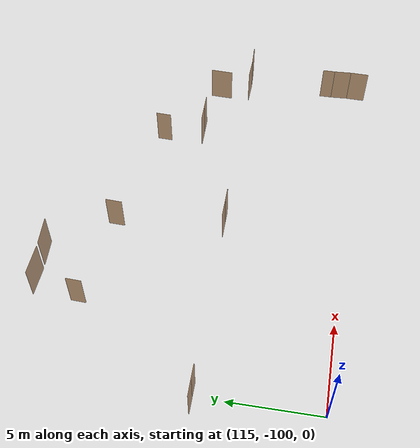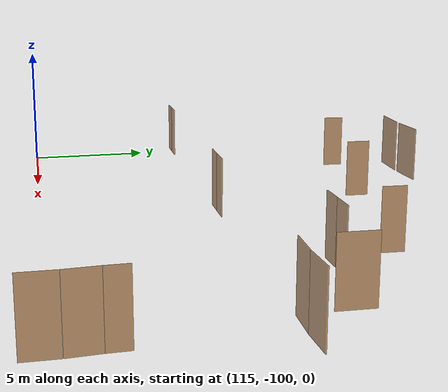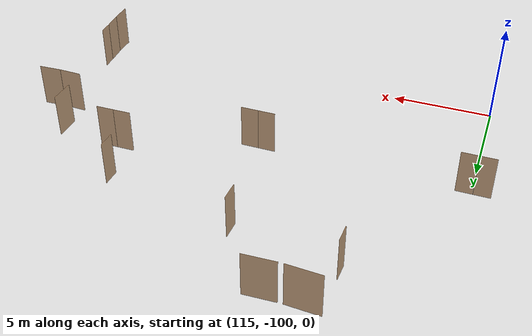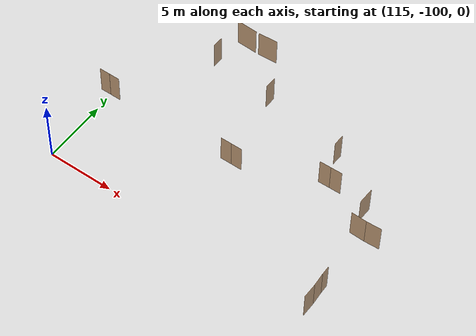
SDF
<sdf version="1.7">
 <world name="sim_world">
  <model name="puerta109">
   <pose>136.6909992048098 -93.4653461180836 0.0 0 0 0.03965179639595527</pose>
   <link name="right">
    <pose>0 0 1.11 0 0 0</pose>
    <visual name="right_visual">
     <geometry><box><size>1.1320165627569505 0.03 2.2</size></box></geometry>
     <material>
      <ambient>0.5 0.25 0 0.6</ambient>
      <diffuse>0.5 0.25 0 0.6</diffuse>
      <pbr><metal><metalness>0.0</metalness></metal></pbr>
     </material>
    </visual>
    <collision name="right_collision">
     <geometry><box><size>1.1320165627569505 0.03 2.2</size></box></geometry>
     <surface><contact><collide_bitmask>0x02</collide_bitmask></contact></surface>
    </collision>
    <inertial>
     <mass>50.0</mass>
     <inertia><ixx>20.17041666666667</ixx><iyy>25.50608957648359</iyy><izz>5.3431729098169205</izz></inertia>
    </inertial>
   </link>
   <joint name="right_joint" type="revolute">
    <parent>world</parent>
    <child>right</child>
    <axis><xyz>0 0 -1</xyz><limit><lower>0</lower><upper>1.57</upper></limit></axis>
    <pose>0.5710082813784753 0 0 0 0 0</pose>
   </joint>
   <plugin name="register_component" filename="libregister_component.so">
    <component name="Door">
     <v_max_door>0.5</v_max_door>
     <a_max_door>0.3</a_max_door>
     <a_nom_door>0.15</a_nom_door>
     <dx_min_door>0.01</dx_min_door>
     <f_max_door>500.0</f_max_door>
     <ros_interface>true</ros_interface>
     <door name="puerta109" type="SwingDoor" left_joint_name="empty_joint" right_joint_name="right_joint"/>
    </component>
   </plugin>
  </model>
  <model name="puerta110">
   <pose>135.54605160742005 -93.46479916189479 0.0 0 0 3.1012541606016946</pose>
   <link name="right">
    <pose>0 0 1.11 0 0 0</pose>
    <visual name="right_visual">
     <geometry><box><size>1.139711565768563 0.03 2.2</size></box></geometry>
     <material>
      <ambient>0.5 0.25 0 0.6</ambient>
      <diffuse>0.5 0.25 0 0.6</diffuse>
      <pbr><metal><metalness>0.0</metalness></metal></pbr>
     </material>
    </visual>
    <collision name="right_collision">
     <geometry><box><size>1.139711565768563 0.03 2.2</size></box></geometry>
     <surface><contact><collide_bitmask>0x02</collide_bitmask></contact></surface>
    </collision>
    <inertial>
     <mass>50.0</mass>
     <inertia><ixx>20.17041666666667</ixx><iyy>25.578926888110963</iyy><izz>5.41601022144429</izz></inertia>
    </inertial>
   </link>
   <joint name="right_joint" type="revolute">
    <parent>world</parent>
    <child>right</child>
    <axis><xyz>0 0 1</xyz><limit><lower>0</lower><upper>1.57</upper></limit></axis>
    <pose>0.5748557828842815 0 0 0 0 0</pose>
   </joint>
   <plugin name="register_component" filename="libregister_component.so">
    <component name="Door">
     <v_max_door>0.5</v_max_door>
     <a_max_door>0.3</a_max_door>
     <a_nom_door>0.15</a_nom_door>
     <dx_min_door>0.01</dx_min_door>
     <f_max_door>500.0</f_max_door>
     <ros_interface>true</ros_interface>
     <door name="puerta110" type="SwingDoor" left_joint_name="empty_joint" right_joint_name="right_joint"/>
    </component>
   </plugin>
  </model>
  <model name="puerta111">
   <pose>134.9949511736417 -91.76422822378078 0.0 0 0 1.5330867218950344</pose>
   <link name="right">
    <pose>0 0 1.11 0 0 0</pose>
    <visual name="right_visual">
     <geometry><box><size>1.225400466177177 0.03 2.2</size></box></geometry>
     <material>
      <ambient>0.5 0.25 0 0.6</ambient>
      <diffuse>0.5 0.25 0 0.6</diffuse>
      <pbr><metal><metalness>0.0</metalness></metal></pbr>
     </material>
    </visual>
    <collision name="right_collision">
     <geometry><box><size>1.225400466177177 0.03 2.2</size></box></geometry>
     <surface><contact><collide_bitmask>0x02</collide_bitmask></contact></surface>
    </collision>
    <inertial>
     <mass>50.0</mass>
     <inertia><ixx>20.17041666666667</ixx><iyy>26.42335959378018</iyy><izz>6.260442927113511</izz></inertia>
    </inertial>
   </link>
   <joint name="right_joint" type="revolute">
    <parent>world</parent>
    <child>right</child>
    <axis><xyz>0 0 1</xyz><limit><lower>0</lower><upper>1.57</upper></limit></axis>
    <pose>0.6177002330885885 0 0 0 0 0</pose>
   </joint>
   <plugin name="register_component" filename="libregister_component.so">
    <component name="Door">
     <v_max_door>0.5</v_max_door>
     <a_max_door>0.3</a_max_door>
     <a_nom_door>0.15</a_nom_door>
     <dx_min_door>0.01</dx_min_door>
     <f_max_door>500.0</f_max_door>
     <ros_interface>true</ros_interface>
     <door name="puerta111" type="SwingDoor" left_joint_name="empty_joint" right_joint_name="right_joint"/>
    </component>
   </plugin>
  </model>
  <model name="puerta112">
   <pose>131.86192301381269 -91.18165677236942 0.0 0 0 0.006785040997605178</pose>
   <link name="right">
    <pose>0.4356185580332882 0 1.11 0 0 0</pose>
    <visual name="right_visual">
     <geometry><box><size>0.8612371160665764 0.03 2.2</size></box></geometry>
     <material>
      <ambient>0.5 0.25 0 0.6</ambient>
      <diffuse>0.5 0.25 0 0.6</diffuse>
      <pbr><metal><metalness>0.0</metalness></metal></pbr>
     </material>
    </visual>
    <collision name="right_collision">
     <geometry><box><size>0.8612371160665764 0.03 2.2</size></box></geometry>
     <surface><contact><collide_bitmask>0x02</collide_bitmask></contact></surface>
    </collision>
    <inertial>
     <mass>50.0</mass>
     <inertia><ixx>20.17041666666667</ixx><iyy>23.257205708711144</iyy><izz>3.094289042044473</izz></inertia>
    </inertial>
   </link>
   <joint name="right_joint" type="revolute">
    <parent>world</parent>
    <child>right</child>
    <axis><xyz>0 0 -1</xyz><limit><lower>0</lower><upper>1.57</upper></limit></axis>
    <pose>0.4356185580332882 0 0 0 0 0</pose>
   </joint>
   <link name="left">
    <pose>-0.4356185580332882 0 1.11 0 0 0</pose>
    <visual name="left_visual">
     <geometry><box><size>0.8612371160665764 0.03 2.2</size></box></geometry>
     <material>
      <ambient>0.5 0.25 0 0.6</ambient>
      <diffuse>0.5 0.25 0 0.6</diffuse>
      <pbr><metal><metalness>0.0</metalness></metal></pbr>
     </material>
    </visual>
    <collision name="left_collision">
     <geometry><box><size>0.8612371160665764 0.03 2.2</size></box></geometry>
     <surface><contact><collide_bitmask>0x02</collide_bitmask></contact></surface>
    </collision>
    <inertial>
     <mass>50.0</mass>
     <inertia><ixx>20.17041666666667</ixx><iyy>23.257205708711144</iyy><izz>3.094289042044473</izz></inertia>
    </inertial>
   </link>
   <joint name="left_joint" type="revolute">
    <parent>world</parent>
    <child>left</child>
    <axis><xyz>0 0 -1</xyz><limit><lower>-1.57</lower><upper>0</upper></limit></axis>
    <pose>-0.4356185580332882 0 0 0 0 0</pose>
   </joint>
   <plugin name="register_component" filename="libregister_component.so">
    <component name="Door">
     <v_max_door>0.5</v_max_door>
     <a_max_door>0.3</a_max_door>
     <a_nom_door>0.15</a_nom_door>
     <dx_min_door>0.01</dx_min_door>
     <f_max_door>500.0</f_max_door>
     <ros_interface>true</ros_interface>
     <door name="puerta112" type="DoubleSwingDoor" left_joint_name="left_joint" right_joint_name="right_joint"/>
    </component>
   </plugin>
  </model>
  <model name="puerta113">
   <pose>131.00848202828178 -88.92952259139423 0.0 0 0 -1.6130169970053267</pose>
   <link name="right">
    <pose>0 0 1.11 0 0 0</pose>
    <visual name="right_visual">
     <geometry><box><size>0.8323058361690955 0.03 2.2</size></box></geometry>
     <material>
      <ambient>0.5 0.25 0 0.6</ambient>
      <diffuse>0.5 0.25 0 0.6</diffuse>
      <pbr><metal><metalness>0.0</metalness></metal></pbr>
     </material>
    </visual>
    <collision name="right_collision">
     <geometry><box><size>0.8323058361690955 0.03 2.2</size></box></geometry>
     <surface><contact><collide_bitmask>0x02</collide_bitmask></contact></surface>
    </collision>
    <inertial>
     <mass>50.0</mass>
     <inertia><ixx>20.17041666666667</ixx><iyy>23.05305418717141</iyy><izz>2.8901375205047386</izz></inertia>
    </inertial>
   </link>
   <joint name="right_joint" type="revolute">
    <parent>world</parent>
    <child>right</child>
    <axis><xyz>0 0 1</xyz><limit><lower>0</lower><upper>1.57</upper></limit></axis>
    <pose>0.42115291808454774 0 0 0 0 0</pose>
   </joint>
   <plugin name="register_component" filename="libregister_component.so">
    <component name="Door">
     <v_max_door>0.5</v_max_door>
     <a_max_door>0.3</a_max_door>
     <a_nom_door>0.15</a_nom_door>
     <dx_min_door>0.01</dx_min_door>
     <f_max_door>500.0</f_max_door>
     <ros_interface>true</ros_interface>
     <door name="puerta113" type="SwingDoor" left_joint_name="empty_joint" right_joint_name="right_joint"/>
    </component>
   </plugin>
  </model>
  <model name="puerta114">
   <pose>124.4180386151069 -87.47750116754106 0.0 0 0 -1.610241551311159</pose>
   <link name="right">
    <pose>0 0 1.11 0 0 0</pose>
    <visual name="right_visual">
     <geometry><box><size>0.8915381152127525 0.03 2.2</size></box></geometry>
     <material>
      <ambient>0.5 0.25 0 0.6</ambient>
      <diffuse>0.5 0.25 0 0.6</diffuse>
      <pbr><metal><metalness>0.0</metalness></metal></pbr>
     </material>
    </visual>
    <collision name="right_collision">
     <geometry><box><size>0.8915381152127525 0.03 2.2</size></box></geometry>
     <surface><contact><collide_bitmask>0x02</collide_bitmask></contact></surface>
    </collision>
    <inertial>
     <mass>50.0</mass>
     <inertia><ixx>20.17041666666667</ixx><iyy>23.478500878654618</iyy><izz>3.3155842119879466</izz></inertia>
    </inertial>
   </link>
   <joint name="right_joint" type="revolute">
    <parent>world</parent>
    <child>right</child>
    <axis><xyz>0 0 1</xyz><limit><lower>0</lower><upper>1.57</upper></limit></axis>
    <pose>0.45076905760637626 0 0 0 0 0</pose>
   </joint>
   <plugin name="register_component" filename="libregister_component.so">
    <component name="Door">
     <v_max_door>0.5</v_max_door>
     <a_max_door>0.3</a_max_door>
     <a_nom_door>0.15</a_nom_door>
     <dx_min_door>0.01</dx_min_door>
     <f_max_door>500.0</f_max_door>
     <ros_interface>true</ros_interface>
     <door name="puerta114" type="SwingDoor" left_joint_name="empty_joint" right_joint_name="right_joint"/>
    </component>
   </plugin>
  </model>
  <model name="puerta115">
   <pose>125.34729614311735 -93.43555804257 0.0 0 0 -0.007075006009822052</pose>
   <link name="right">
    <pose>0.4281722281429445 0 1.11 0 0 0</pose>
    <visual name="right_visual">
     <geometry><box><size>0.846344456285889 0.03 2.2</size></box></geometry>
     <material>
      <ambient>0.5 0.25 0 0.6</ambient>
      <diffuse>0.5 0.25 0 0.6</diffuse>
      <pbr><metal><metalness>0.0</metalness></metal></pbr>
     </material>
    </visual>
    <collision name="right_collision">
     <geometry><box><size>0.846344456285889 0.03 2.2</size></box></geometry>
     <surface><contact><collide_bitmask>0x02</collide_bitmask></contact></surface>
    </collision>
    <inertial>
     <mass>50.0</mass>
     <inertia><ixx>20.17041666666667</ixx><iyy>23.151245577857743</iyy><izz>2.988328911191071</izz></inertia>
    </inertial>
   </link>
   <joint name="right_joint" type="revolute">
    <parent>world</parent>
    <child>right</child>
    <axis><xyz>0 0 1</xyz><limit><lower>0</lower><upper>1.57</upper></limit></axis>
    <pose>0.4281722281429445 0 0 0 0 0</pose>
   </joint>
   <link name="left">
    <pose>-0.4281722281429445 0 1.11 0 0 0</pose>
    <visual name="left_visual">
     <geometry><box><size>0.846344456285889 0.03 2.2</size></box></geometry>
     <material>
      <ambient>0.5 0.25 0 0.6</ambient>
      <diffuse>0.5 0.25 0 0.6</diffuse>
      <pbr><metal><metalness>0.0</metalness></metal></pbr>
     </material>
    </visual>
    <collision name="left_collision">
     <geometry><box><size>0.846344456285889 0.03 2.2</size></box></geometry>
     <surface><contact><collide_bitmask>0x02</collide_bitmask></contact></surface>
    </collision>
    <inertial>
     <mass>50.0</mass>
     <inertia><ixx>20.17041666666667</ixx><iyy>23.151245577857743</iyy><izz>2.988328911191071</izz></inertia>
    </inertial>
   </link>
   <joint name="left_joint" type="revolute">
    <parent>world</parent>
    <child>left</child>
    <axis><xyz>0 0 1</xyz><limit><lower>-1.57</lower><upper>0</upper></limit></axis>
    <pose>-0.4281722281429445 0 0 0 0 0</pose>
   </joint>
   <plugin name="register_component" filename="libregister_component.so">
    <component name="Door">
     <v_max_door>0.5</v_max_door>
     <a_max_door>0.3</a_max_door>
     <a_nom_door>0.15</a_nom_door>
     <dx_min_door>0.01</dx_min_door>
     <f_max_door>500.0</f_max_door>
     <ros_interface>true</ros_interface>
     <door name="puerta115" type="DoubleSwingDoor" left_joint_name="left_joint" right_joint_name="right_joint"/>
    </component>
   </plugin>
  </model>
  <model name="puerta116">
   <pose>114.9262029880637 -93.42428233036992 0.0 0 0 -0.00635058426290977</pose>
   <link name="right">
    <pose>0.4107618623763043 0 1.11 0 0 0</pose>
    <visual name="right_visual">
     <geometry><box><size>0.8115237247526086 0.03 2.2</size></box></geometry>
     <material>
      <ambient>0.5 0.25 0 0.6</ambient>
      <diffuse>0.5 0.25 0 0.6</diffuse>
      <pbr><metal><metalness>0.0</metalness></metal></pbr>
     </material>
    </visual>
    <collision name="right_collision">
     <geometry><box><size>0.8115237247526086 0.03 2.2</size></box></geometry>
     <surface><contact><collide_bitmask>0x02</collide_bitmask></contact></surface>
    </collision>
    <inertial>
     <mass>50.0</mass>
     <inertia><ixx>20.17041666666667</ixx><iyy>22.91071148265145</iyy><izz>2.747794815984782</izz></inertia>
    </inertial>
   </link>
   <joint name="right_joint" type="revolute">
    <parent>world</parent>
    <child>right</child>
    <axis><xyz>0 0 1</xyz><limit><lower>0</lower><upper>1.57</upper></limit></axis>
    <pose>0.4107618623763043 0 0 0 0 0</pose>
   </joint>
   <link name="left">
    <pose>-0.4107618623763043 0 1.11 0 0 0</pose>
    <visual name="left_visual">
     <geometry><box><size>0.8115237247526086 0.03 2.2</size></box></geometry>
     <material>
      <ambient>0.5 0.25 0 0.6</ambient>
      <diffuse>0.5 0.25 0 0.6</diffuse>
      <pbr><metal><metalness>0.0</metalness></metal></pbr>
     </material>
    </visual>
    <collision name="left_collision">
     <geometry><box><size>0.8115237247526086 0.03 2.2</size></box></geometry>
     <surface><contact><collide_bitmask>0x02</collide_bitmask></contact></surface>
    </collision>
    <inertial>
     <mass>50.0</mass>
     <inertia><ixx>20.17041666666667</ixx><iyy>22.91071148265145</iyy><izz>2.747794815984782</izz></inertia>
    </inertial>
   </link>
   <joint name="left_joint" type="revolute">
    <parent>world</parent>
    <child>left</child>
    <axis><xyz>0 0 1</xyz><limit><lower>-1.57</lower><upper>0</upper></limit></axis>
    <pose>-0.4107618623763043 0 0 0 0 0</pose>
   </joint>
   <plugin name="register_component" filename="libregister_component.so">
    <component name="Door">
     <v_max_door>0.5</v_max_door>
     <a_max_door>0.3</a_max_door>
     <a_nom_door>0.15</a_nom_door>
     <dx_min_door>0.01</dx_min_door>
     <f_max_door>500.0</f_max_door>
     <ros_interface>true</ros_interface>
     <door name="puerta116" type="DoubleSwingDoor" left_joint_name="left_joint" right_joint_name="right_joint"/>
    </component>
   </plugin>
  </model>
  <model name="puerta161">
   <pose>136.1189040680918 -100.0409165302782 0.0 0 0 -1.5909676570602367</pose>
   <link name="right">
    <pose>0 0 1.11 0 0 0</pose>
    <visual name="right_visual">
     <geometry><box><size>1.0392333467231558 0.03 2.2</size></box></geometry>
     <material>
      <ambient>0.5 0.25 0 0.6</ambient>
      <diffuse>0.5 0.25 0 0.6</diffuse>
      <pbr><metal><metalness>0.0</metalness></metal></pbr>
     </material>
    </visual>
    <collision name="right_collision">
     <geometry><box><size>1.0392333467231558 0.03 2.2</size></box></geometry>
     <surface><contact><collide_bitmask>0x02</collide_bitmask></contact></surface>
    </collision>
    <inertial>
     <mass>50.0</mass>
     <inertia><ixx>20.17041666666667</ixx><iyy>24.66669145392255</iyy><izz>4.503774787255878</izz></inertia>
    </inertial>
   </link>
   <joint name="right_joint" type="revolute">
    <parent>world</parent>
    <child>right</child>
    <axis><xyz>0 0 1</xyz><limit><lower>0</lower><upper>1.57</upper></limit></axis>
    <pose>0.5246166733615779 0 0 0 0 0</pose>
   </joint>
   <plugin name="register_component" filename="libregister_component.so">
    <component name="Door">
     <v_max_door>0.5</v_max_door>
     <a_max_door>0.3</a_max_door>
     <a_nom_door>0.15</a_nom_door>
     <dx_min_door>0.01</dx_min_door>
     <f_max_door>500.0</f_max_door>
     <ros_interface>true</ros_interface>
     <door name="puerta161" type="SwingDoor" left_joint_name="empty_joint" right_joint_name="right_joint"/>
    </component>
   </plugin>
  </model>
  <model name="puerta162">
   <pose>136.10302130183982 -99.02761708017954 0.0 0 0 -1.5167066809419885</pose>
   <link name="right">
    <pose>0 0 1.11 0 0 0</pose>
    <visual name="right_visual">
     <geometry><box><size>0.9690107954249821 0.03 2.2</size></box></geometry>
     <material>
      <ambient>0.5 0.25 0 0.6</ambient>
      <diffuse>0.5 0.25 0 0.6</diffuse>
      <pbr><metal><metalness>0.0</metalness></metal></pbr>
     </material>
    </visual>
    <collision name="right_collision">
     <geometry><box><size>0.9690107954249821 0.03 2.2</size></box></geometry>
     <surface><contact><collide_bitmask>0x02</collide_bitmask></contact></surface>
    </collision>
    <inertial>
     <mass>50.0</mass>
     <inertia><ixx>20.17041666666667</ixx><iyy>24.07909134020899</iyy><izz>3.9161746735423195</izz></inertia>
    </inertial>
   </link>
   <joint name="right_joint" type="revolute">
    <parent>world</parent>
    <child>right</child>
    <axis><xyz>0 0 1</xyz><limit><lower>0</lower><upper>1.57</upper></limit></axis>
    <pose>0.4895053977124911 0 0 0 0 0</pose>
   </joint>
   <plugin name="register_component" filename="libregister_component.so">
    <component name="Door">
     <v_max_door>0.5</v_max_door>
     <a_max_door>0.3</a_max_door>
     <a_nom_door>0.15</a_nom_door>
     <dx_min_door>0.01</dx_min_door>
     <f_max_door>500.0</f_max_door>
     <ros_interface>true</ros_interface>
     <door name="puerta162" type="SwingDoor" left_joint_name="empty_joint" right_joint_name="right_joint"/>
    </component>
   </plugin>
  </model>
  <model name="puerta163">
   <pose>136.07390640317396 -98.19165765591404 0.0 0 0 -1.5631614996855772</pose>
   <link name="right">
    <pose>0 0 1.11 0 0 0</pose>
    <visual name="right_visual">
     <geometry><box><size>0.6843600821462696 0.03 2.2</size></box></geometry>
     <material>
      <ambient>0.5 0.25 0 0.6</ambient>
      <diffuse>0.5 0.25 0 0.6</diffuse>
      <pbr><metal><metalness>0.0</metalness></metal></pbr>
     </material>
    </visual>
    <collision name="right_collision">
     <geometry><box><size>0.6843600821462696 0.03 2.2</size></box></geometry>
     <surface><contact><collide_bitmask>0x02</collide_bitmask></contact></surface>
    </collision>
    <inertial>
     <mass>50.0</mass>
     <inertia><ixx>20.17041666666667</ixx><iyy>22.118119675146875</iyy><izz>1.955203008480204</izz></inertia>
    </inertial>
   </link>
   <joint name="right_joint" type="revolute">
    <parent>world</parent>
    <child>right</child>
    <axis><xyz>0 0 1</xyz><limit><lower>0</lower><upper>1.57</upper></limit></axis>
    <pose>0.3471800410731348 0 0 0 0 0</pose>
   </joint>
   <plugin name="register_component" filename="libregister_component.so">
    <component name="Door">
     <v_max_door>0.5</v_max_door>
     <a_max_door>0.3</a_max_door>
     <a_nom_door>0.15</a_nom_door>
     <dx_min_door>0.01</dx_min_door>
     <f_max_door>500.0</f_max_door>
     <ros_interface>true</ros_interface>
     <door name="puerta163" type="SwingDoor" left_joint_name="empty_joint" right_joint_name="right_joint"/>
    </component>
   </plugin>
  </model>
  <model name="puerta164">
   <pose>120.10934916420882 -84.17041471901175 0.0 0 0 3.0836812469706065</pose>
   <link name="right">
    <pose>0 0 1.11 0 0 0</pose>
    <visual name="right_visual">
     <geometry><box><size>1.628482339702156 0.03 2.2</size></box></geometry>
     <material>
      <ambient>0.5 0.25 0 0.6</ambient>
      <diffuse>0.5 0.25 0 0.6</diffuse>
      <pbr><metal><metalness>0.0</metalness></metal></pbr>
     </material>
    </visual>
    <collision name="right_collision">
     <geometry><box><size>1.628482339702156 0.03 2.2</size></box></geometry>
     <surface><contact><collide_bitmask>0x02</collide_bitmask></contact></surface>
    </collision>
    <inertial>
     <mass>50.0</mass>
     <inertia><ixx>20.17041666666667</ixx><iyy>31.216478044674204</iyy><izz>11.053561378007535</izz></inertia>
    </inertial>
   </link>
   <joint name="right_joint" type="revolute">
    <parent>world</parent>
    <child>right</child>
    <axis><xyz>0 0 -1</xyz><limit><lower>0</lower><upper>1.57</upper></limit></axis>
    <pose>0.819241169851078 0 0 0 0 0</pose>
   </joint>
   <plugin name="register_component" filename="libregister_component.so">
    <component name="Door">
     <v_max_door>0.5</v_max_door>
     <a_max_door>0.3</a_max_door>
     <a_nom_door>0.15</a_nom_door>
     <dx_min_door>0.01</dx_min_door>
     <f_max_door>500.0</f_max_door>
     <ros_interface>true</ros_interface>
     <door name="puerta164" type="SwingDoor" left_joint_name="empty_joint" right_joint_name="right_joint"/>
    </component>
   </plugin>
  </model>
  <model name="puerta165">
   <pose>121.91697625789402 -84.18819079514805 0.0 0 0 -3.102842558878548</pose>
   <link name="right">
    <pose>0 0 1.11 0 0 0</pose>
    <visual name="right_visual">
     <geometry><box><size>1.5202278643985496 0.03 2.2</size></box></geometry>
     <material>
      <ambient>0.5 0.25 0 0.6</ambient>
      <diffuse>0.5 0.25 0 0.6</diffuse>
      <pbr><metal><metalness>0.0</metalness></metal></pbr>
     </material>
    </visual>
    <collision name="right_collision">
     <geometry><box><size>1.5202278643985496 0.03 2.2</size></box></geometry>
     <surface><contact><collide_bitmask>0x02</collide_bitmask></contact></surface>
    </collision>
    <inertial>
     <mass>50.0</mass>
     <inertia><ixx>20.17041666666667</ixx><iyy>29.7962198320574</iyy><izz>9.63330316539073</izz></inertia>
    </inertial>
   </link>
   <joint name="right_joint" type="revolute">
    <parent>world</parent>
    <child>right</child>
    <axis><xyz>0 0 -1</xyz><limit><lower>0</lower><upper>1.57</upper></limit></axis>
    <pose>0.7651139321992748 0 0 0 0 0</pose>
   </joint>
   <plugin name="register_component" filename="libregister_component.so">
    <component name="Door">
     <v_max_door>0.5</v_max_door>
     <a_max_door>0.3</a_max_door>
     <a_nom_door>0.15</a_nom_door>
     <dx_min_door>0.01</dx_min_door>
     <f_max_door>500.0</f_max_door>
     <ros_interface>true</ros_interface>
     <door name="puerta165" type="SwingDoor" left_joint_name="empty_joint" right_joint_name="right_joint"/>
    </component>
   </plugin>
  </model>
  <model name="puerta170">
   <pose>119.27370529159072 -86.60035173490292 0.0 0 0 1.527974793947575</pose>
   <link name="right">
    <pose>0 0 1.11 0 0 0</pose>
    <visual name="right_visual">
     <geometry><box><size>0.8204938535896585 0.03 2.2</size></box></geometry>
     <material>
      <ambient>0.5 0.25 0 0.6</ambient>
      <diffuse>0.5 0.25 0 0.6</diffuse>
      <pbr><metal><metalness>0.0</metalness></metal></pbr>
     </material>
    </visual>
    <collision name="right_collision">
     <geometry><box><size>0.8204938535896585 0.03 2.2</size></box></geometry>
     <surface><contact><collide_bitmask>0x02</collide_bitmask></contact></surface>
    </collision>
    <inertial>
     <mass>50.0</mass>
     <inertia><ixx>20.17041666666667</ixx><iyy>22.97170901574337</iyy><izz>2.8087923490767004</izz></inertia>
    </inertial>
   </link>
   <joint name="right_joint" type="revolute">
    <parent>world</parent>
    <child>right</child>
    <axis><xyz>0 0 1</xyz><limit><lower>0</lower><upper>1.57</upper></limit></axis>
    <pose>0.4152469267948293 0 0 0 0 0</pose>
   </joint>
   <plugin name="register_component" filename="libregister_component.so">
    <component name="Door">
     <v_max_door>0.5</v_max_door>
     <a_max_door>0.3</a_max_door>
     <a_nom_door>0.15</a_nom_door>
     <dx_min_door>0.01</dx_min_door>
     <f_max_door>500.0</f_max_door>
     <ros_interface>true</ros_interface>
     <door name="puerta170" type="SwingDoor" left_joint_name="empty_joint" right_joint_name="right_joint"/>
    </component>
   </plugin>
  </model>
 </world>
</sdf>
